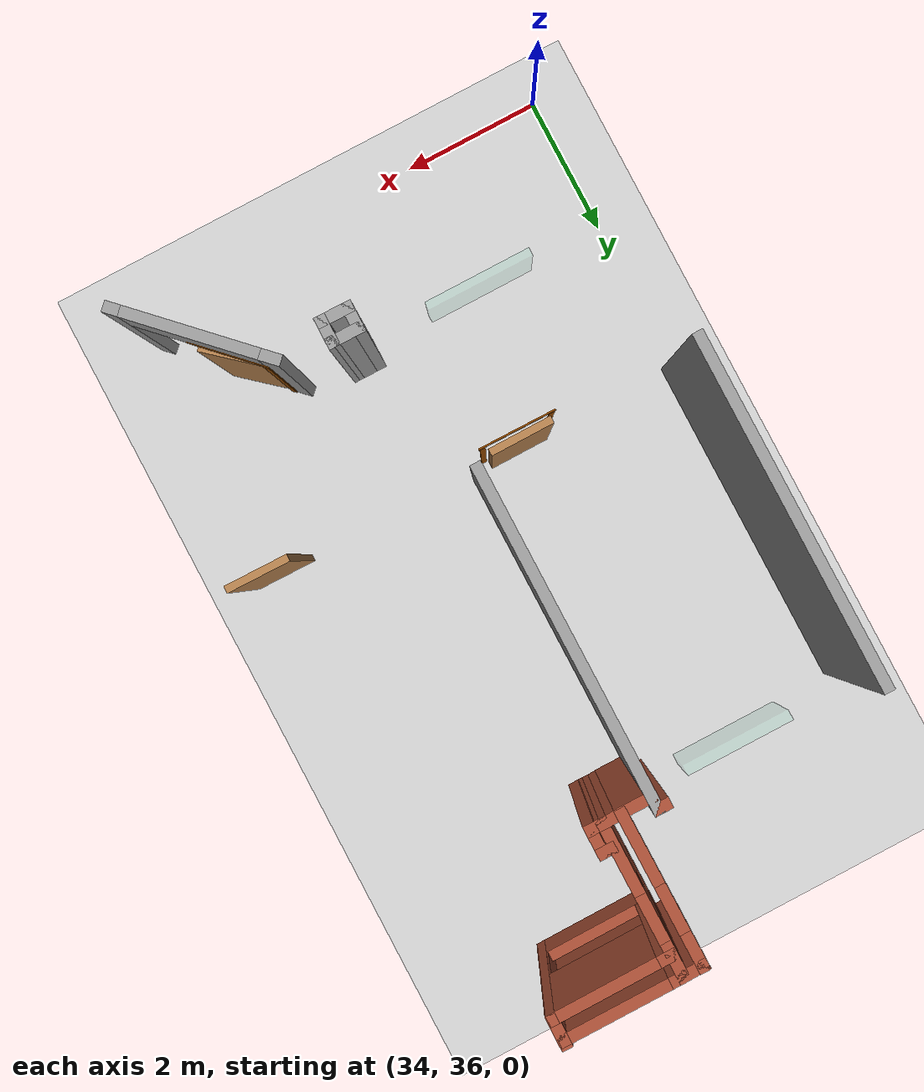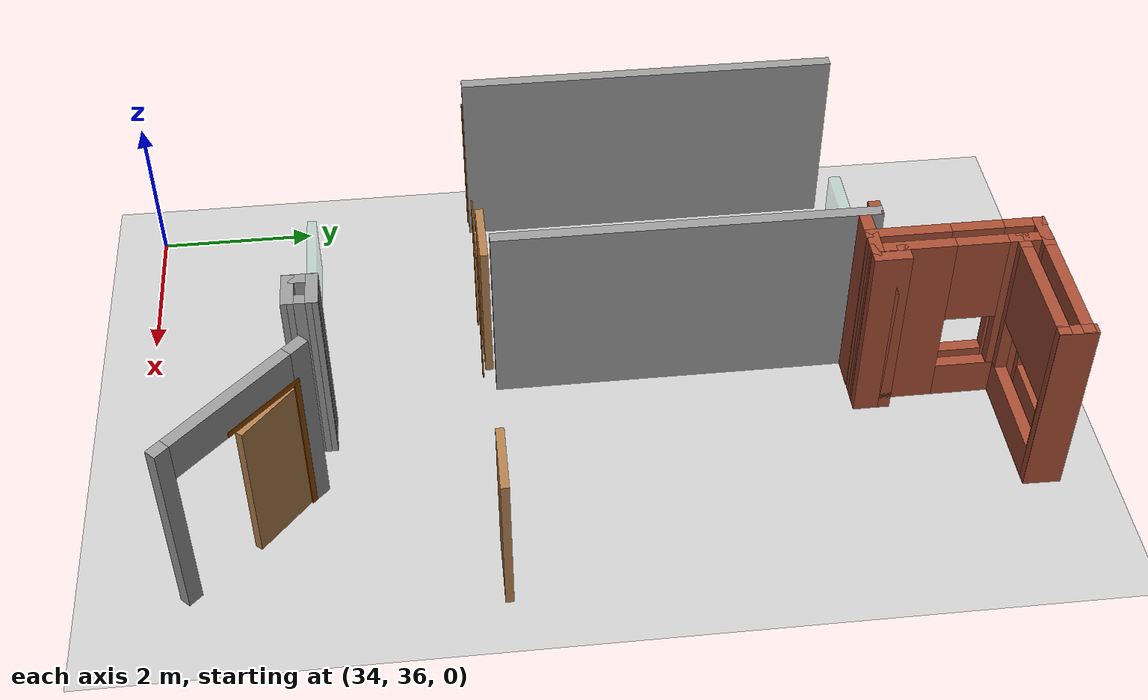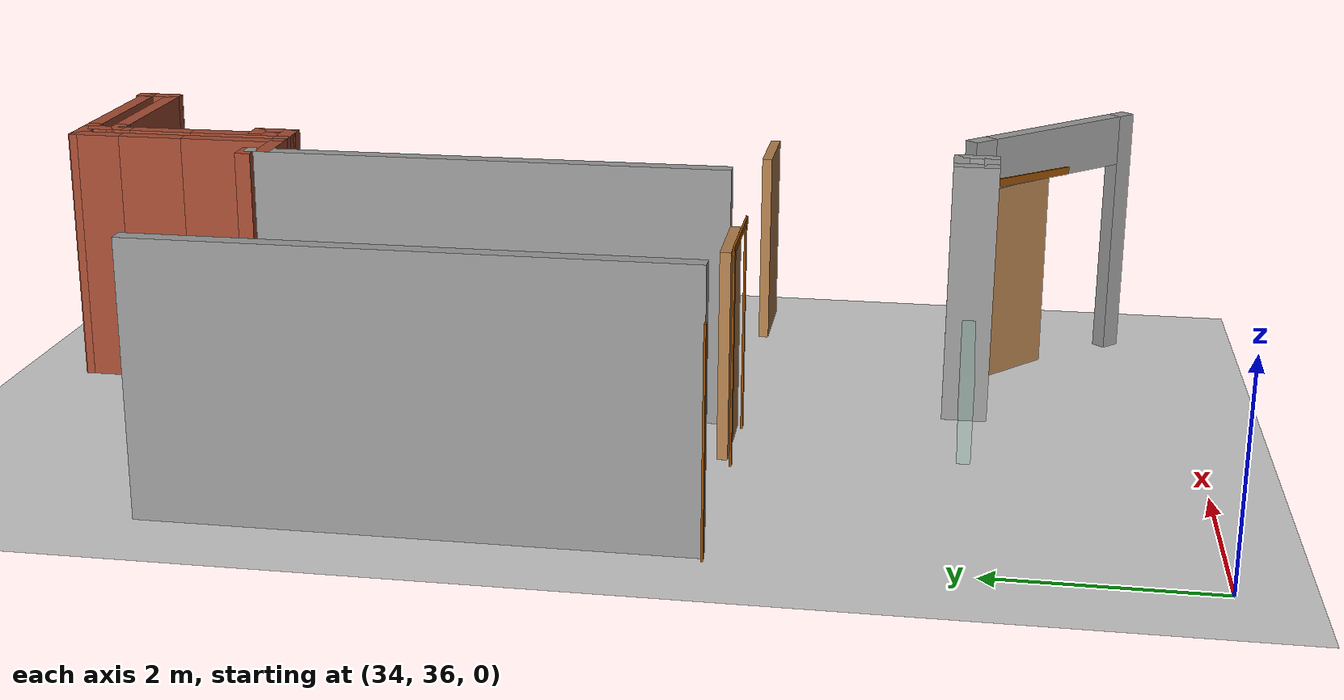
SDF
<sdf version="1.6">
 <world name="default">
  <model name="ground_plane">
   <static>1</static>
   <link name="link">
    <collision name="collision">
     <geometry><plane><normal>0 0 1</normal><size>100 100</size></plane></geometry>
     <surface><friction><ode><mu>100</mu><mu2>50</mu2></ode></friction></surface>
    </collision>
    <visual name="visual">
     <cast_shadows>0</cast_shadows>
     <geometry><plane><normal>0 0 1</normal><size>100 100</size></plane></geometry>
     <material>
      <script><uri>file://media/materials/scripts/gazebo.material</uri><name>Gazebo/Grey</name></script>
     </material>
    </visual>
   </link>
  </model>
  <model name="CVSSP">
   <pose>23.8714 24.094 0 0 -0 0</pose>
   <link name="Wall_1">
    <pose>15.5976 13.2926 0 0 0 -0.785398</pose>
    <visual name="Wall_1_Visual_0">
     <pose>-0.986494 0 1.25 0 -0 0</pose>
     <geometry><box><size>0.277012 0.15 2.5</size></box></geometry>
     <material>
      <script><uri>file://media/materials/scripts/gazebo.material</uri><name>Gazebo/Grey</name></script>
      <ambient>0.588235 0.588235 0.588235 1</ambient>
     </material>
    </visual>
    <collision name="Wall_1_Collision_0">
     <geometry><box><size>0.277012 0.15 2.5</size></box></geometry>
     <pose>-0.986494 0 1.25 0 -0 0</pose>
    </collision>
    <visual name="Wall_1_Visual_1">
     <pose>1.02335 0 1.25 0 -0 0</pose>
     <geometry><box><size>0.203299 0.15 2.5</size></box></geometry>
     <material>
      <script><uri>file://media/materials/scripts/gazebo.material</uri><name>Gazebo/Grey</name></script>
      <ambient>0.588235 0.588235 0.588235 1</ambient>
     </material>
    </visual>
    <collision name="Wall_1_Collision_1">
     <geometry><box><size>0.203299 0.15 2.5</size></box></geometry>
     <pose>1.02335 0 1.25 0 -0 0</pose>
    </collision>
    <visual name="Wall_1_Visual_2">
     <pose>0.036857 0 2.25 0 -0 0</pose>
     <geometry><box><size>1.76969 0.15 0.5</size></box></geometry>
     <material>
      <script><uri>file://media/materials/scripts/gazebo.material</uri><name>Gazebo/Grey</name></script>
      <ambient>0.588235 0.588235 0.588235 1</ambient>
     </material>
    </visual>
    <collision name="Wall_1_Collision_2">
     <geometry><box><size>1.76969 0.15 0.5</size></box></geometry>
     <pose>0.036857 0 2.25 0 -0 0</pose>
    </collision>
   </link>
   <link name="Wall_270">
    <collision name="Wall_270_Collision">
     <geometry><box><size>0.465577 0.15 2.5</size></box></geometry>
     <pose>0 0 1.25 0 -0 0</pose>
    </collision>
    <visual name="Wall_270_Visual">
     <pose>0 0 1.25 0 -0 0</pose>
     <geometry><box><size>0.465577 0.15 2.5</size></box></geometry>
     <material>
      <script><uri>file://media/materials/scripts/gazebo.material</uri><name>Gazebo/Bricks</name></script>
      <ambient>1 1 1 1</ambient>
     </material>
    </visual>
    <pose>15.5965 22.7138 0 0 0 -1.58788</pose>
   </link>
   <link name="Wall_286">
    <pose>14.7864 22.5502 0 0 0 -3.13685</pose>
    <visual name="Wall_286_Visual_0">
     <pose>-0.813568 0 1.25 0 -0 0</pose>
     <geometry><box><size>0.118345 0.15 2.5</size></box></geometry>
     <material>
      <script><uri>file://media/materials/scripts/gazebo.material</uri><name>Gazebo/Bricks</name></script>
      <ambient>1 1 1 1</ambient>
     </material>
    </visual>
    <collision name="Wall_286_Collision_0">
     <geometry><box><size>0.118345 0.15 2.5</size></box></geometry>
     <pose>-0.813568 0 1.25 0 -0 0</pose>
    </collision>
    <visual name="Wall_286_Visual_1">
     <pose>0.059173 0 0.25 0 -0 0</pose>
     <geometry><box><size>1.62714 0.15 0.5</size></box></geometry>
     <material>
      <script><uri>file://media/materials/scripts/gazebo.material</uri><name>Gazebo/Bricks</name></script>
      <ambient>1 1 1 1</ambient>
     </material>
    </visual>
    <collision name="Wall_286_Collision_1">
     <geometry><box><size>1.62714 0.15 0.5</size></box></geometry>
     <pose>0.059173 0 0.25 0 -0 0</pose>
    </collision>
    <visual name="Wall_286_Visual_2">
     <pose>0.74556 0 1.5 0 -0 0</pose>
     <geometry><box><size>0.254362 0.15 2</size></box></geometry>
     <material>
      <script><uri>file://media/materials/scripts/gazebo.material</uri><name>Gazebo/Bricks</name></script>
      <ambient>1 1 1 1</ambient>
     </material>
    </visual>
    <collision name="Wall_286_Collision_2">
     <geometry><box><size>0.254362 0.15 2</size></box></geometry>
     <pose>0.74556 0 1.5 0 -0 0</pose>
    </collision>
    <visual name="Wall_286_Visual_3">
     <pose>-0.068008 0 1.9 0 -0 0</pose>
     <geometry><box><size>1.37277 0.15 1.2</size></box></geometry>
     <material>
      <script><uri>file://media/materials/scripts/gazebo.material</uri><name>Gazebo/Bricks</name></script>
      <ambient>1 1 1 1</ambient>
     </material>
    </visual>
    <collision name="Wall_286_Collision_3">
     <geometry><box><size>1.37277 0.15 1.2</size></box></geometry>
     <pose>-0.068008 0 1.9 0 -0 0</pose>
    </collision>
   </link>
   <link name="Wall_287">
    <collision name="Wall_287_Collision">
     <geometry><box><size>0.437335 0.15 2.5</size></box></geometry>
     <pose>0 0 1.25 0 -0 0</pose>
    </collision>
    <visual name="Wall_287_Visual">
     <pose>0 0 1.25 0 -0 0</pose>
     <geometry><box><size>0.437335 0.15 2.5</size></box></geometry>
     <material>
      <script><uri>file://media/materials/scripts/gazebo.material</uri><name>Gazebo/Bricks</name></script>
      <ambient>1 1 1 1</ambient>
     </material>
    </visual>
    <pose>13.9886 22.6901 0 0 -0 1.5708</pose>
   </link>
   <link name="Wall_288">
    <pose>14.7864 22.8338 0 0 -0 0</pose>
    <visual name="Wall_288_Visual_0">
     <pose>-0.749362 0 1.25 0 -0 0</pose>
     <geometry><box><size>0.246758 0.15 2.5</size></box></geometry>
     <material>
      <script><uri>file://media/materials/scripts/gazebo.material</uri><name>Gazebo/Bricks</name></script>
      <ambient>1 1 1 1</ambient>
     </material>
    </visual>
    <collision name="Wall_288_Collision_0">
     <geometry><box><size>0.246758 0.15 2.5</size></box></geometry>
     <pose>-0.749362 0 1.25 0 -0 0</pose>
    </collision>
    <visual name="Wall_288_Visual_1">
     <pose>0.123379 0 0.25 0 -0 0</pose>
     <geometry><box><size>1.49872 0.15 0.5</size></box></geometry>
     <material>
      <script><uri>file://media/materials/scripts/gazebo.material</uri><name>Gazebo/Bricks</name></script>
      <ambient>1 1 1 1</ambient>
     </material>
    </visual>
    <collision name="Wall_288_Collision_1">
     <geometry><box><size>1.49872 0.15 0.5</size></box></geometry>
     <pose>0.123379 0 0.25 0 -0 0</pose>
    </collision>
    <visual name="Wall_288_Visual_2">
     <pose>0.806008 0 1.5 0 -0 0</pose>
     <geometry><box><size>0.133465 0.15 2</size></box></geometry>
     <material>
      <script><uri>file://media/materials/scripts/gazebo.material</uri><name>Gazebo/Bricks</name></script>
      <ambient>1 1 1 1</ambient>
     </material>
    </visual>
    <collision name="Wall_288_Collision_2">
     <geometry><box><size>0.133465 0.15 2</size></box></geometry>
     <pose>0.806008 0 1.5 0 -0 0</pose>
    </collision>
    <visual name="Wall_288_Visual_3">
     <pose>0.056646 0 1.9 0 -0 0</pose>
     <geometry><box><size>1.36526 0.15 1.2</size></box></geometry>
     <material>
      <script><uri>file://media/materials/scripts/gazebo.material</uri><name>Gazebo/Bricks</name></script>
      <ambient>1 1 1 1</ambient>
     </material>
    </visual>
    <collision name="Wall_288_Collision_3">
     <geometry><box><size>1.36526 0.15 1.2</size></box></geometry>
     <pose>0.056646 0 1.9 0 -0 0</pose>
    </collision>
   </link>
   <link name="Wall_291">
    <collision name="Wall_291_Collision">
     <geometry><box><size>0.414758 0.15 2.5</size></box></geometry>
     <pose>0 0 1.25 0 -0 0</pose>
    </collision>
    <visual name="Wall_291_Visual">
     <pose>0 0 1.25 0 -0 0</pose>
     <geometry><box><size>0.414758 0.15 2.5</size></box></geometry>
     <material>
      <script><uri>file://media/materials/scripts/gazebo.material</uri><name>Gazebo/Bricks</name></script>
      <ambient>1 1 1 1</ambient>
     </material>
    </visual>
    <pose>13.8563 22.83 0 0 0 -3.11303</pose>
   </link>
   <link name="Wall_292">
    <pose>13.7278 21.814 0 0 0 -1.56709</pose>
    <visual name="Wall_292_Visual_0">
     <pose>-0.83496 0 1.25 0 -0 0</pose>
     <geometry><box><size>0.519602 0.15 2.5</size></box></geometry>
     <material>
      <script><uri>file://media/materials/scripts/gazebo.material</uri><name>Gazebo/Bricks</name></script>
      <ambient>1 1 1 1</ambient>
     </material>
    </visual>
    <collision name="Wall_292_Collision_0">
     <geometry><box><size>0.519602 0.15 2.5</size></box></geometry>
     <pose>-0.83496 0 1.25 0 -0 0</pose>
    </collision>
    <visual name="Wall_292_Visual_1">
     <pose>0.259801 0 0.25 0 -0 0</pose>
     <geometry><box><size>1.66992 0.15 0.5</size></box></geometry>
     <material>
      <script><uri>file://media/materials/scripts/gazebo.material</uri><name>Gazebo/Bricks</name></script>
      <ambient>1 1 1 1</ambient>
     </material>
    </visual>
    <collision name="Wall_292_Collision_1">
     <geometry><box><size>1.66992 0.15 0.5</size></box></geometry>
     <pose>0.259801 0 0.25 0 -0 0</pose>
    </collision>
    <visual name="Wall_292_Visual_2">
     <pose>0.580428 0 1.5 0 -0 0</pose>
     <geometry><box><size>1.02867 0.15 2</size></box></geometry>
     <material>
      <script><uri>file://media/materials/scripts/gazebo.material</uri><name>Gazebo/Bricks</name></script>
      <ambient>1 1 1 1</ambient>
     </material>
    </visual>
    <collision name="Wall_292_Collision_2">
     <geometry><box><size>1.02867 0.15 2</size></box></geometry>
     <pose>0.580428 0 1.5 0 -0 0</pose>
    </collision>
    <visual name="Wall_292_Visual_3">
     <pose>-0.254532 0 1.9 0 -0 0</pose>
     <geometry><box><size>0.641254 0.15 1.2</size></box></geometry>
     <material>
      <script><uri>file://media/materials/scripts/gazebo.material</uri><name>Gazebo/Bricks</name></script>
      <ambient>1 1 1 1</ambient>
     </material>
    </visual>
    <collision name="Wall_292_Collision_3">
     <geometry><box><size>0.641254 0.15 1.2</size></box></geometry>
     <pose>-0.254532 0 1.9 0 -0 0</pose>
    </collision>
   </link>
   <link name="Wall_293">
    <collision name="Wall_293_Collision">
     <geometry><box><size>0.407097 0.15 2.5</size></box></geometry>
     <pose>0 0 1.25 0 -0 0</pose>
    </collision>
    <visual name="Wall_293_Visual">
     <pose>0 0 1.25 0 -0 0</pose>
     <geometry><box><size>0.407097 0.15 2.5</size></box></geometry>
     <material>
      <script><uri>file://media/materials/scripts/gazebo.material</uri><name>Gazebo/Bricks</name></script>
      <ambient>1 1 1 1</ambient>
     </material>
    </visual>
    <pose>13.8601 20.7857 0 0 0 -0.008088</pose>
   </link>
   <link name="Wall_294">
    <pose>13.9886 21.6277 0 0 -0 1.5708</pose>
    <visual name="Wall_294_Visual_0">
     <pose>-0.401803 0 1.25 0 -0 0</pose>
     <geometry><box><size>1.03275 0.15 2.5</size></box></geometry>
     <material>
      <script><uri>file://media/materials/scripts/gazebo.material</uri><name>Gazebo/Bricks</name></script>
      <ambient>1 1 1 1</ambient>
     </material>
    </visual>
    <collision name="Wall_294_Collision_0">
     <geometry><box><size>1.03275 0.15 2.5</size></box></geometry>
     <pose>-0.401803 0 1.25 0 -0 0</pose>
    </collision>
    <visual name="Wall_294_Visual_1">
     <pose>0.516374 0 0.25 0 -0 0</pose>
     <geometry><box><size>0.803605 0.15 0.5</size></box></geometry>
     <material>
      <script><uri>file://media/materials/scripts/gazebo.material</uri><name>Gazebo/Bricks</name></script>
      <ambient>1 1 1 1</ambient>
     </material>
    </visual>
    <collision name="Wall_294_Collision_1">
     <geometry><box><size>0.803605 0.15 0.5</size></box></geometry>
     <pose>0.516374 0 0.25 0 -0 0</pose>
    </collision>
    <visual name="Wall_294_Visual_2">
     <pose>0.834198 0 1.5 0 -0 0</pose>
     <geometry><box><size>0.167956 0.15 2</size></box></geometry>
     <material>
      <script><uri>file://media/materials/scripts/gazebo.material</uri><name>Gazebo/Bricks</name></script>
      <ambient>1 1 1 1</ambient>
     </material>
    </visual>
    <collision name="Wall_294_Collision_2">
     <geometry><box><size>0.167956 0.15 2</size></box></geometry>
     <pose>0.834198 0 1.5 0 -0 0</pose>
    </collision>
    <visual name="Wall_294_Visual_3">
     <pose>0.432396 0 1.9 0 -0 0</pose>
     <geometry><box><size>0.635649 0.15 1.2</size></box></geometry>
     <material>
      <script><uri>file://media/materials/scripts/gazebo.material</uri><name>Gazebo/Bricks</name></script>
      <ambient>1 1 1 1</ambient>
     </material>
    </visual>
    <collision name="Wall_294_Collision_3">
     <geometry><box><size>0.635649 0.15 1.2</size></box></geometry>
     <pose>0.432396 0 1.9 0 -0 0</pose>
    </collision>
   </link>
   <link name="Wall_296">
    <collision name="Wall_296_Collision">
     <geometry><box><size>0.30879 0.15 2.5</size></box></geometry>
     <pose>0 0 1.25 0 -0 0</pose>
    </collision>
    <visual name="Wall_296_Visual">
     <pose>0 0 1.25 0 -0 0</pose>
     <geometry><box><size>0.30879 0.15 2.5</size></box></geometry>
     <material>
      <script><uri>file://media/materials/scripts/gazebo.material</uri><name>Gazebo/Bricks</name></script>
      <ambient>1 1 1 1</ambient>
     </material>
    </visual>
    <pose>14.068 20.7846 0 0 -0 0</pose>
   </link>
   <link name="Wall_297">
    <collision name="Wall_297_Collision">
     <geometry><box><size>0.460019 0.15 2.5</size></box></geometry>
     <pose>0 0 1.25 0 -0 0</pose>
    </collision>
    <visual name="Wall_297_Visual">
     <pose>0 0 1.25 0 -0 0</pose>
     <geometry><box><size>0.460019 0.15 2.5</size></box></geometry>
     <material>
      <script><uri>file://media/materials/scripts/gazebo.material</uri><name>Gazebo/Bricks</name></script>
      <ambient>1 1 1 1</ambient>
     </material>
    </visual>
    <pose>14.1474 20.9396 0 0 -0 1.5708</pose>
   </link>
   <link name="Wall_299">
    <collision name="Wall_299_Collision">
     <geometry><box><size>0.25 0.15 2.5</size></box></geometry>
     <pose>0 0 1.25 0 -0 0</pose>
    </collision>
    <visual name="Wall_299_Visual">
     <pose>0 0 1.25 0 -0 0</pose>
     <geometry><box><size>0.25 0.15 2.5</size></box></geometry>
     <material>
      <script><uri>file://media/materials/scripts/gazebo.material</uri><name>Gazebo/Bricks</name></script>
      <ambient>1 1 1 1</ambient>
     </material>
    </visual>
    <pose>14.0974 21.0946 0 0 -0 3.14159</pose>
   </link>
   <link name="Wall_304">
    <collision name="Wall_304_Collision">
     <geometry><box><size>0.25 0.15 2.5</size></box></geometry>
     <pose>0 0 1.25 0 -0 0</pose>
    </collision>
    <visual name="Wall_304_Visual">
     <pose>0 0 1.25 0 -0 0</pose>
     <geometry><box><size>0.25 0.15 2.5</size></box></geometry>
     <material>
      <script><uri>file://media/materials/scripts/gazebo.material</uri><name>Gazebo/Bricks</name></script>
      <ambient>1 1 1 1</ambient>
     </material>
    </visual>
    <pose>13.2698 20.9408 0 0 -0 0</pose>
   </link>
   <link name="Wall_305">
    <collision name="Wall_305_Collision">
     <geometry><box><size>4.75 0.15 2.5</size></box></geometry>
     <pose>0 0 1.25 0 -0 0</pose>
    </collision>
    <visual name="Wall_305_Visual">
     <pose>0 0 1.25 0 -0 0</pose>
     <geometry><box><size>4.75 0.15 2.5</size></box></geometry>
     <material>
      <script><uri>file://media/materials/scripts/gazebo.material</uri><name>Gazebo/Grey</name></script>
      <ambient>1 1 1 1</ambient>
     </material>
    </visual>
    <pose>13.3198 18.6408 0 0 0 -1.5708</pose>
   </link>
   <link name="Wall_307">
    <collision name="Wall_307_Collision">
     <geometry><box><size>0.533753 0.15 2.5</size></box></geometry>
     <pose>0 0 1.25 0 -0 0</pose>
    </collision>
    <visual name="Wall_307_Visual">
     <pose>0 0 1.25 0 -0 0</pose>
     <geometry><box><size>0.533753 0.15 2.5</size></box></geometry>
     <material>
      <script><uri>file://media/materials/scripts/gazebo.material</uri><name>Gazebo/Bricks</name></script>
      <ambient>1 1 1 1</ambient>
     </material>
    </visual>
    <pose>13.5323 20.7794 0 0 -0 0</pose>
   </link>
   <link name="Wall_337">
    <collision name="Wall_337_Collision">
     <geometry><box><size>4.89779 0.15 2.5</size></box></geometry>
     <pose>0 0 1.25 0 -0 0</pose>
    </collision>
    <visual name="Wall_337_Visual">
     <pose>0 0 1.25 0 -0 0</pose>
     <geometry><box><size>4.89779 0.15 2.5</size></box></geometry>
     <material>
      <script><uri>file://media/materials/scripts/gazebo.material</uri><name>Gazebo/Grey</name></script>
      <ambient>0.588235 0.588235 0.588235 1</ambient>
     </material>
    </visual>
    <pose>10.2148 18.5614 0 0 -0 1.5708</pose>
   </link>
   <link name="Wall_62">
    <collision name="Wall_62_Collision">
     <geometry><box><size>0.5 0.15 2.5</size></box></geometry>
     <pose>0 0 1.25 0 -0 0</pose>
    </collision>
    <visual name="Wall_62_Visual">
     <pose>0 0 1.25 0 -0 0</pose>
     <geometry><box><size>0.5 0.15 2.5</size></box></geometry>
     <material>
      <script><uri>file://media/materials/scripts/gazebo.material</uri><name>Gazebo/Grey</name></script>
      <ambient>1 1 1 1</ambient>
     </material>
    </visual>
    <pose>13.9808 14.1734 0 0 -0 0</pose>
   </link>
   <link name="Wall_63">
    <collision name="Wall_63_Collision">
     <geometry><box><size>0.433407 0.15 2.5</size></box></geometry>
     <pose>0 0 1.25 0 -0 0</pose>
    </collision>
    <visual name="Wall_63_Visual">
     <pose>0 0 1.25 0 -0 0</pose>
     <geometry><box><size>0.433407 0.15 2.5</size></box></geometry>
     <material>
      <script><uri>file://media/materials/scripts/gazebo.material</uri><name>Gazebo/Grey</name></script>
      <ambient>1 1 1 1</ambient>
     </material>
    </visual>
    <pose>14.1548 14.0317 0 0 0 -1.57777</pose>
   </link>
   <link name="Wall_64">
    <collision name="Wall_64_Collision">
     <geometry><box><size>0.498059 0.15 2.5</size></box></geometry>
     <pose>0 0 1.25 0 -0 0</pose>
    </collision>
    <visual name="Wall_64_Visual">
     <pose>0 0 1.25 0 -0 0</pose>
     <geometry><box><size>0.498059 0.15 2.5</size></box></geometry>
     <material>
      <script><uri>file://media/materials/scripts/gazebo.material</uri><name>Gazebo/Grey</name></script>
      <ambient>1 1 1 1</ambient>
     </material>
    </visual>
    <pose>13.9798 13.8925 0 0 -0 3.12731</pose>
   </link>
   <link name="Wall_65">
    <collision name="Wall_65_Collision">
     <geometry><box><size>0.428419 0.15 2.5</size></box></geometry>
     <pose>0 0 1.25 0 -0 0</pose>
    </collision>
    <visual name="Wall_65_Visual">
     <pose>0 0 1.25 0 -0 0</pose>
     <geometry><box><size>0.428419 0.15 2.5</size></box></geometry>
     <material>
      <script><uri>file://media/materials/scripts/gazebo.material</uri><name>Gazebo/Grey</name></script>
      <ambient>1 1 1 1</ambient>
     </material>
    </visual>
    <pose>13.8008 14.0342 0 0 -0 1.5708</pose>
   </link>
   <static>1</static>
  </model>
  <model name="Basic_ply_door">
   <link name="link">
    <pose>1.20031 2.43241 0.995323 -0 -0 -0.009284</pose>
    <inertial>
     <mass>0.5167</mass>
     <inertia>
      <ixx>0.00086117</ixx>
      <ixy>0</ixy>
      <ixz>0</ixz>
      <iyy>0.00086117</iyy>
      <iyz>0</iyz>
      <izz>0.00086117</izz>
     </inertia>
    </inertial>
    <gravity>0</gravity>
    <visual name="visual">
     <geometry><box><size>0.88 0.1 1.96</size></box></geometry>
     <material>
      <script><uri>file://media/materials/scripts/gazebo.material</uri><name>Gazebo/Wood</name></script>
      <shader type="pixel"><normal_map>__default__</normal_map></shader>
      <ambient>1 1 1 1</ambient>
      <diffuse>1 1 1 1</diffuse>
      <specular>0.2 0.2 0.2 1</specular>
      <emissive>0 0 0 1</emissive>
     </material>
    </visual>
    <collision name="collision">
     <geometry><box><size>0.88 0.1 1.96</size></box></geometry>
     <surface>
      <friction>
       <ode><mu>1</mu><mu2>1</mu2><fdir1>0 0 0</fdir1><slip1>0</slip1><slip2>0</slip2></ode>
       <torsional>
        <coefficient>1</coefficient>
        <patch_radius>0</patch_radius>
        <surface_radius>0.01</surface_radius>
        <use_patch_radius>0</use_patch_radius>
        <ode><slip>0</slip></ode>
       </torsional>
      </friction>
      <bounce><restitution_coefficient>0</restitution_coefficient><threshold>1e+06</threshold></bounce>
      <contact>
       <collide_without_contact>0</collide_without_contact>
       <collide_without_contact_bitmask>1</collide_without_contact_bitmask>
       <collide_bitmask>1</collide_bitmask>
       <ode>
        <soft_cfm>0</soft_cfm>
        <soft_erp>0.2</soft_erp>
        <kp>100000</kp>
        <kd>100</kd>
        <max_vel>100</max_vel>
        <min_depth>0.001</min_depth>
       </ode>
       <bullet>
        <split_impulse>1</split_impulse>
        <split_impulse_penetration_threshold>-0.01</split_impulse_penetration_threshold>
        <soft_cfm>0</soft_cfm>
        <soft_erp>0.2</soft_erp>
        <kp>100000</kp>
        <kd>100</kd>
       </bullet>
      </contact>
     </surface>
    </collision>
   </link>
   <static>1</static>
   <pose>39.0212 37.8356 -0.001013 0 -0 0</pose>
  </model>
  <model name="window_0_clone">
   <link name="link">
    <inertial>
     <mass>0.185318</mass>
     <inertia>
      <ixx>0.0157792</ixx>
      <ixy>0</ixy>
      <ixz>0</ixz>
      <iyy>0.0398142</iyy>
      <iyz>0</iyz>
      <izz>0.0247071</izz>
     </inertia>
    </inertial>
    <visual name="visual">
     <geometry><box><size>1.55374 0.147514 0.82384</size></box></geometry>
     <material>
      <script><name>Gazebo/Grey</name><uri>file://media/materials/scripts/gazebo.material</uri></script>
      <shader type="pixel"><normal_map>__default__</normal_map></shader>
      <ambient>0.435 0.796 0.675 1</ambient>
      <diffuse>0.7 0.7 0.7 1</diffuse>
      <specular>0.01 0.01 0.01 1</specular>
      <emissive>0 0 0 1</emissive>
     </material>
     <transparency>0.8</transparency>
    </visual>
    <collision name="collision">
     <geometry><box><size>1.55374 0.147514 0.82384</size></box></geometry>
     <surface>
      <friction>
       <ode><mu>1</mu><mu2>1</mu2><fdir1>0 0 0</fdir1><slip1>0</slip1><slip2>0</slip2></ode>
       <torsional>
        <coefficient>1</coefficient>
        <patch_radius>0</patch_radius>
        <surface_radius>0</surface_radius>
        <use_patch_radius>1</use_patch_radius>
        <ode><slip>0</slip></ode>
       </torsional>
      </friction>
      <bounce><restitution_coefficient>0</restitution_coefficient><threshold>1e+06</threshold></bounce>
      <contact>
       <collide_without_contact>0</collide_without_contact>
       <collide_without_contact_bitmask>1</collide_without_contact_bitmask>
       <collide_bitmask>1</collide_bitmask>
       <ode>
        <soft_cfm>0</soft_cfm>
        <soft_erp>0.2</soft_erp>
        <kp>1e+13</kp>
        <kd>1</kd>
        <max_vel>0.01</max_vel>
        <min_depth>0</min_depth>
       </ode>
       <bullet>
        <split_impulse>1</split_impulse>
        <split_impulse_penetration_threshold>-0.01</split_impulse_penetration_threshold>
        <soft_cfm>0</soft_cfm>
        <soft_erp>0.2</soft_erp>
        <kp>1e+13</kp>
        <kd>1</kd>
       </bullet>
      </contact>
     </surface>
    </collision>
   </link>
   <static>1</static>
   <pose>35.8388 45.0823 0.890829 0 -0 0</pose>
  </model>
  <model name="basic_ply_door_corrected_clone_clone">
   <link name="link">
    <pose>-0 0 1.00385 0 -0 0</pose>
    <inertial>
     <mass>0.5167</mass>
     <inertia>
      <ixx>0.00086117</ixx>
      <ixy>0</ixy>
      <ixz>0</ixz>
      <iyy>0.00086117</iyy>
      <iyz>0</iyz>
      <izz>0.00086117</izz>
     </inertia>
    </inertial>
    <gravity>0</gravity>
    <visual name="visual">
     <geometry><box><size>0.88 0.1 1.96</size></box></geometry>
     <material>
      <script><uri>file://media/materials/scripts/gazebo.material</uri><name>Gazebo/Wood</name></script>
      <shader type="pixel"><normal_map>__default__</normal_map></shader>
      <ambient>1 1 1 1</ambient>
      <diffuse>1 1 1 1</diffuse>
      <specular>0.2 0.2 0.2 1</specular>
      <emissive>0 0 0 1</emissive>
     </material>
    </visual>
    <collision name="collision">
     <geometry><box><size>0.88 0.1 1.96</size></box></geometry>
     <surface>
      <friction>
       <ode><mu>1</mu><mu2>1</mu2><fdir1>0 0 0</fdir1><slip1>0</slip1><slip2>0</slip2></ode>
       <torsional>
        <coefficient>1</coefficient>
        <patch_radius>0</patch_radius>
        <surface_radius>0.01</surface_radius>
        <use_patch_radius>0</use_patch_radius>
        <ode><slip>0</slip></ode>
       </torsional>
      </friction>
      <bounce><restitution_coefficient>0</restitution_coefficient><threshold>1e+06</threshold></bounce>
      <contact>
       <collide_without_contact>0</collide_without_contact>
       <collide_without_contact_bitmask>1</collide_without_contact_bitmask>
       <collide_bitmask>1</collide_bitmask>
       <ode>
        <soft_cfm>0</soft_cfm>
        <soft_erp>0.2</soft_erp>
        <kp>100000</kp>
        <kd>100</kd>
        <max_vel>100</max_vel>
        <min_depth>0.001</min_depth>
       </ode>
       <bullet>
        <split_impulse>1</split_impulse>
        <split_impulse_penetration_threshold>-0.01</split_impulse_penetration_threshold>
        <soft_cfm>0</soft_cfm>
        <soft_erp>0.2</soft_erp>
        <kp>100000</kp>
        <kd>100</kd>
       </bullet>
      </contact>
     </surface>
    </collision>
   </link>
   <static>1</static>
   <pose>36.5115 40.2899 0.02761 0 -0 0.005419</pose>
  </model>
  <model name="window_rlab">
   <link name="link">
    <inertial>
     <mass>0.185318</mass>
     <inertia>
      <ixx>0.0157792</ixx>
      <ixy>0</ixy>
      <ixz>0</ixz>
      <iyy>0.0398142</iyy>
      <iyz>0</iyz>
      <izz>0.0247071</izz>
     </inertia>
    </inertial>
    <gravity>0</gravity>
    <visual name="visual">
     <geometry><box><size>1.54426 0.115953 0.786254</size></box></geometry>
     <material>
      <script><name>Gazebo/Grey</name><uri>file://media/materials/scripts/gazebo.material</uri></script>
      <shader type="pixel"><normal_map>__default__</normal_map></shader>
      <ambient>0.435 0.796 0.675 1</ambient>
      <diffuse>0.7 0.7 0.7 1</diffuse>
      <specular>0.01 0.01 0.01 1</specular>
      <emissive>0 0 0 1</emissive>
     </material>
     <transparency>0.8</transparency>
    </visual>
    <collision name="collision">
     <geometry><box><size>1.54426 0.115953 0.786254</size></box></geometry>
     <surface>
      <friction>
       <ode><mu>1</mu><mu2>1</mu2><fdir1>0 0 0</fdir1><slip1>0</slip1><slip2>0</slip2></ode>
       <torsional>
        <coefficient>1</coefficient>
        <patch_radius>0</patch_radius>
        <surface_radius>0</surface_radius>
        <use_patch_radius>1</use_patch_radius>
        <ode><slip>0</slip></ode>
       </torsional>
      </friction>
      <bounce><restitution_coefficient>0</restitution_coefficient><threshold>1e+06</threshold></bounce>
      <contact>
       <collide_without_contact>0</collide_without_contact>
       <collide_without_contact_bitmask>1</collide_without_contact_bitmask>
       <collide_bitmask>1</collide_bitmask>
       <ode>
        <soft_cfm>0</soft_cfm>
        <soft_erp>0.2</soft_erp>
        <kp>1e+13</kp>
        <kd>1</kd>
        <max_vel>0.01</max_vel>
        <min_depth>0</min_depth>
       </ode>
       <bullet>
        <split_impulse>1</split_impulse>
        <split_impulse_penetration_threshold>-0.01</split_impulse_penetration_threshold>
        <soft_cfm>0</soft_cfm>
        <soft_erp>0.2</soft_erp>
        <kp>1e+13</kp>
        <kd>1</kd>
       </bullet>
      </contact>
     </surface>
    </collision>
   </link>
   <static>1</static>
   <pose>35.9818 38.1379 0.88691 0 -0 0</pose>
  </model>
  <model name="basic_ply_door_corrected_clone_clone_clone_0">
   <link name="link">
    <pose>-0 0 1.00385 0 -0 0</pose>
    <inertial>
     <mass>0.5167</mass>
     <inertia>
      <ixx>0.00086117</ixx>
      <ixy>0</ixy>
      <ixz>0</ixz>
      <iyy>0.00086117</iyy>
      <iyz>0</iyz>
      <izz>0.00086117</izz>
     </inertia>
    </inertial>
    <gravity>0</gravity>
    <visual name="visual">
     <geometry><box><size>0.88 0.1 1.96</size></box></geometry>
     <material>
      <script><uri>file://media/materials/scripts/gazebo.material</uri><name>Gazebo/Wood</name></script>
      <shader type="pixel"><normal_map>__default__</normal_map></shader>
      <ambient>1 1 1 1</ambient>
      <diffuse>1 1 1 1</diffuse>
      <specular>0.2 0.2 0.2 1</specular>
      <emissive>0 0 0 1</emissive>
     </material>
    </visual>
    <collision name="collision">
     <geometry><box><size>0.88 0.1 1.96</size></box></geometry>
     <surface>
      <friction>
       <ode><mu>1</mu><mu2>1</mu2><fdir1>0 0 0</fdir1><slip1>0</slip1><slip2>0</slip2></ode>
       <torsional>
        <coefficient>1</coefficient>
        <patch_radius>0</patch_radius>
        <surface_radius>0.01</surface_radius>
        <use_patch_radius>0</use_patch_radius>
        <ode><slip>0</slip></ode>
       </torsional>
      </friction>
      <bounce><restitution_coefficient>0</restitution_coefficient><threshold>1e+06</threshold></bounce>
      <contact>
       <collide_without_contact>0</collide_without_contact>
       <collide_without_contact_bitmask>1</collide_without_contact_bitmask>
       <collide_bitmask>1</collide_bitmask>
       <ode>
        <soft_cfm>0</soft_cfm>
        <soft_erp>0.2</soft_erp>
        <kp>100000</kp>
        <kd>100</kd>
        <max_vel>100</max_vel>
        <min_depth>0.001</min_depth>
       </ode>
       <bullet>
        <split_impulse>1</split_impulse>
        <split_impulse_penetration_threshold>-0.01</split_impulse_penetration_threshold>
        <soft_cfm>0</soft_cfm>
        <soft_erp>0.2</soft_erp>
        <kp>100000</kp>
        <kd>100</kd>
       </bullet>
      </contact>
     </surface>
    </collision>
   </link>
   <static>1</static>
   <pose>39.2213 37.6969 -0.013611 -0.006074 -0.001069 -0.713436</pose>
  </model>
  <model name="oak_frame_0_clone_clone_7_clone_clone_0">
   <link name="link">
    <inertial>
     <mass>1</mass>
     <inertia>
      <ixx>0.166667</ixx>
      <ixy>0</ixy>
      <ixz>0</ixz>
      <iyy>0.166667</iyy>
      <iyz>0</iyz>
      <izz>0.166667</izz>
     </inertia>
    </inertial>
    <visual name="visual">
     <geometry><box><size>0.018685 0.076446 2.026</size></box></geometry>
     <material>
      <script><name>Gazebo/Grey</name><uri>file://media/materials/scripts/gazebo.material</uri></script>
      <shader type="pixel"><normal_map>__default__</normal_map></shader>
      <diffuse>0.58 0.29 0 0</diffuse>
      <ambient>0.58 0.29 0 1</ambient>
      <specular>0.01 0.01 0.01 1</specular>
      <emissive>0 0 0 1</emissive>
     </material>
    </visual>
    <collision name="collision">
     <geometry><box><size>0.018685 0.076446 2.026</size></box></geometry>
     <surface>
      <friction>
       <ode><mu>1</mu><mu2>1</mu2><fdir1>0 0 0</fdir1><slip1>0</slip1><slip2>0</slip2></ode>
       <torsional>
        <coefficient>1</coefficient>
        <patch_radius>0</patch_radius>
        <surface_radius>0</surface_radius>
        <use_patch_radius>1</use_patch_radius>
        <ode><slip>0</slip></ode>
       </torsional>
      </friction>
      <bounce><restitution_coefficient>0</restitution_coefficient><threshold>1e+06</threshold></bounce>
      <contact>
       <collide_without_contact>0</collide_without_contact>
       <collide_without_contact_bitmask>1</collide_without_contact_bitmask>
       <collide_bitmask>1</collide_bitmask>
       <ode>
        <soft_cfm>0</soft_cfm>
        <soft_erp>0.2</soft_erp>
        <kp>1e+13</kp>
        <kd>1</kd>
        <max_vel>0.01</max_vel>
        <min_depth>0</min_depth>
       </ode>
       <bullet>
        <split_impulse>1</split_impulse>
        <split_impulse_penetration_threshold>-0.01</split_impulse_penetration_threshold>
        <soft_cfm>0</soft_cfm>
        <soft_erp>0.2</soft_erp>
        <kp>1e+13</kp>
        <kd>1</kd>
       </bullet>
      </contact>
     </surface>
    </collision>
   </link>
   <static>1</static>
   <pose>38.9132 38.0588 1.03242 0 -0 0.782752</pose>
  </model>
  <model name="oak_frame_0_clone_clone_7_clone_clone_2">
   <link name="link">
    <inertial>
     <mass>1</mass>
     <inertia>
      <ixx>0.166667</ixx>
      <ixy>0</ixy>
      <ixz>0</ixz>
      <iyy>0.166667</iyy>
      <iyz>0</iyz>
      <izz>0.166667</izz>
     </inertia>
    </inertial>
    <visual name="visual">
     <geometry><box><size>0.018685 0.076446 2.026</size></box></geometry>
     <material>
      <script><name>Gazebo/Grey</name><uri>file://media/materials/scripts/gazebo.material</uri></script>
      <shader type="pixel"><normal_map>__default__</normal_map></shader>
      <diffuse>0.58 0.29 0 0</diffuse>
      <ambient>0.58 0.29 0 1</ambient>
      <specular>0.01 0.01 0.01 1</specular>
      <emissive>0 0 0 1</emissive>
     </material>
    </visual>
    <collision name="collision">
     <geometry><box><size>0.018685 0.076446 2.026</size></box></geometry>
     <surface>
      <friction>
       <ode><mu>1</mu><mu2>1</mu2><fdir1>0 0 0</fdir1><slip1>0</slip1><slip2>0</slip2></ode>
       <torsional>
        <coefficient>1</coefficient>
        <patch_radius>0</patch_radius>
        <surface_radius>0</surface_radius>
        <use_patch_radius>1</use_patch_radius>
        <ode><slip>0</slip></ode>
       </torsional>
      </friction>
      <bounce><restitution_coefficient>0</restitution_coefficient><threshold>1e+06</threshold></bounce>
      <contact>
       <collide_without_contact>0</collide_without_contact>
       <collide_without_contact_bitmask>1</collide_without_contact_bitmask>
       <collide_bitmask>1</collide_bitmask>
       <ode>
        <soft_cfm>0</soft_cfm>
        <soft_erp>0.2</soft_erp>
        <kp>1e+13</kp>
        <kd>1</kd>
        <max_vel>0.01</max_vel>
        <min_depth>0</min_depth>
       </ode>
       <bullet>
        <split_impulse>1</split_impulse>
        <split_impulse_penetration_threshold>-0.01</split_impulse_penetration_threshold>
        <soft_cfm>0</soft_cfm>
        <soft_erp>0.2</soft_erp>
        <kp>1e+13</kp>
        <kd>1</kd>
       </bullet>
      </contact>
     </surface>
    </collision>
   </link>
   <static>1</static>
   <pose>38.7874 37.94 1.03242 0 -0 0.79165</pose>
  </model>
  <model name="oak_frame_0_clone_clone_10_clone_clone_0">
   <link name="link">
    <inertial>
     <mass>1</mass>
     <inertia>
      <ixx>0.166667</ixx>
      <ixy>0</ixy>
      <ixz>0</ixz>
      <iyy>0.166667</iyy>
      <iyz>0</iyz>
      <izz>0.166667</izz>
     </inertia>
    </inertial>
    <visual name="visual">
     <geometry><box><size>0.018685 0.076446 2.026</size></box></geometry>
     <material>
      <script><name>Gazebo/Grey</name><uri>file://media/materials/scripts/gazebo.material</uri></script>
      <shader type="pixel"><normal_map>__default__</normal_map></shader>
      <diffuse>0.58 0.29 0 0</diffuse>
      <ambient>0.58 0.29 0 1</ambient>
      <specular>0.01 0.01 0.01 1</specular>
      <emissive>0 0 0 1</emissive>
     </material>
    </visual>
    <collision name="collision">
     <geometry><box><size>0.018685 0.076446 2.026</size></box></geometry>
     <surface>
      <friction>
       <ode><mu>1</mu><mu2>1</mu2><fdir1>0 0 0</fdir1><slip1>0</slip1><slip2>0</slip2></ode>
       <torsional>
        <coefficient>1</coefficient>
        <patch_radius>0</patch_radius>
        <surface_radius>0</surface_radius>
        <use_patch_radius>1</use_patch_radius>
        <ode><slip>0</slip></ode>
       </torsional>
      </friction>
      <bounce><restitution_coefficient>0</restitution_coefficient><threshold>1e+06</threshold></bounce>
      <contact>
       <collide_without_contact>0</collide_without_contact>
       <collide_without_contact_bitmask>1</collide_without_contact_bitmask>
       <collide_bitmask>1</collide_bitmask>
       <ode>
        <soft_cfm>0</soft_cfm>
        <soft_erp>0.2</soft_erp>
        <kp>1e+13</kp>
        <kd>1</kd>
        <max_vel>0.01</max_vel>
        <min_depth>0</min_depth>
       </ode>
       <bullet>
        <split_impulse>1</split_impulse>
        <split_impulse_penetration_threshold>-0.01</split_impulse_penetration_threshold>
        <soft_cfm>0</soft_cfm>
        <soft_erp>0.2</soft_erp>
        <kp>1e+13</kp>
        <kd>1</kd>
       </bullet>
      </contact>
     </surface>
    </collision>
   </link>
   <static>1</static>
   <pose>37.0122 40.207 1.03242 0 0 -1.56774</pose>
  </model>
  <model name="oak_frame_0_clone_clone_10_clone_clone_1">
   <link name="link">
    <inertial>
     <mass>1</mass>
     <inertia>
      <ixx>0.166667</ixx>
      <ixy>0</ixy>
      <ixz>0</ixz>
      <iyy>0.166667</iyy>
      <iyz>0</iyz>
      <izz>0.166667</izz>
     </inertia>
    </inertial>
    <visual name="visual">
     <geometry><box><size>0.018685 0.076446 2.026</size></box></geometry>
     <material>
      <script><name>Gazebo/Grey</name><uri>file://media/materials/scripts/gazebo.material</uri></script>
      <shader type="pixel"><normal_map>__default__</normal_map></shader>
      <diffuse>0.58 0.29 0 0</diffuse>
      <ambient>0.58 0.29 0 1</ambient>
      <specular>0.01 0.01 0.01 1</specular>
      <emissive>0 0 0 1</emissive>
     </material>
    </visual>
    <collision name="collision">
     <geometry><box><size>0.018685 0.076446 2.026</size></box></geometry>
     <surface>
      <friction>
       <ode><mu>1</mu><mu2>1</mu2><fdir1>0 0 0</fdir1><slip1>0</slip1><slip2>0</slip2></ode>
       <torsional>
        <coefficient>1</coefficient>
        <patch_radius>0</patch_radius>
        <surface_radius>0</surface_radius>
        <use_patch_radius>1</use_patch_radius>
        <ode><slip>0</slip></ode>
       </torsional>
      </friction>
      <bounce><restitution_coefficient>0</restitution_coefficient><threshold>1e+06</threshold></bounce>
      <contact>
       <collide_without_contact>0</collide_without_contact>
       <collide_without_contact_bitmask>1</collide_without_contact_bitmask>
       <collide_bitmask>1</collide_bitmask>
       <ode>
        <soft_cfm>0</soft_cfm>
        <soft_erp>0.2</soft_erp>
        <kp>1e+13</kp>
        <kd>1</kd>
        <max_vel>0.01</max_vel>
        <min_depth>0</min_depth>
       </ode>
       <bullet>
        <split_impulse>1</split_impulse>
        <split_impulse_penetration_threshold>-0.01</split_impulse_penetration_threshold>
        <soft_cfm>0</soft_cfm>
        <soft_erp>0.2</soft_erp>
        <kp>1e+13</kp>
        <kd>1</kd>
       </bullet>
      </contact>
     </surface>
    </collision>
   </link>
   <static>1</static>
   <pose>36.0304 40.2038 1.03242 0 0 -1.56774</pose>
  </model>
  <model name="oak_frame_0_clone_clone_10_clone_clone_2">
   <link name="link">
    <inertial>
     <mass>1</mass>
     <inertia>
      <ixx>0.166667</ixx>
      <ixy>0</ixy>
      <ixz>0</ixz>
      <iyy>0.166667</iyy>
      <iyz>0</iyz>
      <izz>0.166667</izz>
     </inertia>
    </inertial>
    <visual name="visual">
     <geometry><box><size>0.018685 0.076446 2.026</size></box></geometry>
     <material>
      <script><name>Gazebo/Grey</name><uri>file://media/materials/scripts/gazebo.material</uri></script>
      <shader type="pixel"><normal_map>__default__</normal_map></shader>
      <diffuse>0.58 0.29 0 0</diffuse>
      <ambient>0.58 0.29 0 1</ambient>
      <specular>0.01 0.01 0.01 1</specular>
      <emissive>0 0 0 1</emissive>
     </material>
    </visual>
    <collision name="collision">
     <geometry><box><size>0.018685 0.076446 2.026</size></box></geometry>
     <surface>
      <friction>
       <ode><mu>1</mu><mu2>1</mu2><fdir1>0 0 0</fdir1><slip1>0</slip1><slip2>0</slip2></ode>
       <torsional>
        <coefficient>1</coefficient>
        <patch_radius>0</patch_radius>
        <surface_radius>0</surface_radius>
        <use_patch_radius>1</use_patch_radius>
        <ode><slip>0</slip></ode>
       </torsional>
      </friction>
      <bounce><restitution_coefficient>0</restitution_coefficient><threshold>1e+06</threshold></bounce>
      <contact>
       <collide_without_contact>0</collide_without_contact>
       <collide_without_contact_bitmask>1</collide_without_contact_bitmask>
       <collide_bitmask>1</collide_bitmask>
       <ode>
        <soft_cfm>0</soft_cfm>
        <soft_erp>0.2</soft_erp>
        <kp>1e+13</kp>
        <kd>1</kd>
        <max_vel>0.01</max_vel>
        <min_depth>0</min_depth>
       </ode>
       <bullet>
        <split_impulse>1</split_impulse>
        <split_impulse_penetration_threshold>-0.01</split_impulse_penetration_threshold>
        <soft_cfm>0</soft_cfm>
        <soft_erp>0.2</soft_erp>
        <kp>1e+13</kp>
        <kd>1</kd>
       </bullet>
      </contact>
     </surface>
    </collision>
   </link>
   <static>1</static>
   <pose>33.9419 40.2005 1.03242 0 0 -1.56774</pose>
  </model>
  <model name="oak_frame_0_clone_0_clone_8_clone_0_clone">
   <link name="link">
    <inertial>
     <mass>1</mass>
     <inertia>
      <ixx>0.166667</ixx>
      <ixy>0</ixy>
      <ixz>0</ixz>
      <iyy>0.166667</iyy>
      <iyz>0</iyz>
      <izz>0.166667</izz>
     </inertia>
    </inertial>
    <visual name="visual">
     <geometry><box><size>0.018685 0.076446 1.08038</size></box></geometry>
     <material>
      <script><name>Gazebo/Grey</name><uri>file://media/materials/scripts/gazebo.material</uri></script>
      <shader type="pixel"><normal_map>__default__</normal_map></shader>
      <diffuse>0.58 0.29 0 0</diffuse>
      <ambient>0.58 0.29 0 1</ambient>
      <specular>0.01 0.01 0.01 1</specular>
      <emissive>0 0 0 1</emissive>
     </material>
    </visual>
    <collision name="collision">
     <geometry><box><size>0.018685 0.076446 1.08038</size></box></geometry>
     <surface>
      <friction>
       <ode><mu>1</mu><mu2>1</mu2><fdir1>0 0 0</fdir1><slip1>0</slip1><slip2>0</slip2></ode>
       <torsional>
        <coefficient>1</coefficient>
        <patch_radius>0</patch_radius>
        <surface_radius>0</surface_radius>
        <use_patch_radius>1</use_patch_radius>
        <ode><slip>0</slip></ode>
       </torsional>
      </friction>
      <bounce><restitution_coefficient>0</restitution_coefficient><threshold>1e+06</threshold></bounce>
      <contact>
       <collide_without_contact>0</collide_without_contact>
       <collide_without_contact_bitmask>1</collide_without_contact_bitmask>
       <collide_bitmask>1</collide_bitmask>
       <ode>
        <soft_cfm>0</soft_cfm>
        <soft_erp>0.2</soft_erp>
        <kp>1e+13</kp>
        <kd>1</kd>
        <max_vel>0.01</max_vel>
        <min_depth>0</min_depth>
       </ode>
       <bullet>
        <split_impulse>1</split_impulse>
        <split_impulse_penetration_threshold>-0.01</split_impulse_penetration_threshold>
        <soft_cfm>0</soft_cfm>
        <soft_erp>0.2</soft_erp>
        <kp>1e+13</kp>
        <kd>1</kd>
       </bullet>
      </contact>
     </surface>
    </collision>
   </link>
   <static>1</static>
   <pose>39.2592 37.7027 2.05052 -1.58389 0.01298 -2.3603</pose>
  </model>
  <model name="oak_frame_0_clone_0_clone_8_clone_0_clone_0_clone">
   <link name="link">
    <inertial>
     <mass>1</mass>
     <inertia>
      <ixx>0.166667</ixx>
      <ixy>0</ixy>
      <ixz>0</ixz>
      <iyy>0.166667</iyy>
      <iyz>0</iyz>
      <izz>0.166667</izz>
     </inertia>
    </inertial>
    <visual name="visual">
     <geometry><box><size>0.018685 0.076446 1.08038</size></box></geometry>
     <material>
      <script><name>Gazebo/Grey</name><uri>file://media/materials/scripts/gazebo.material</uri></script>
      <shader type="pixel"><normal_map>__default__</normal_map></shader>
      <diffuse>0.58 0.29 0 0</diffuse>
      <ambient>0.58 0.29 0 1</ambient>
      <specular>0.01 0.01 0.01 1</specular>
      <emissive>0 0 0 1</emissive>
     </material>
    </visual>
    <collision name="collision">
     <geometry><box><size>0.018685 0.076446 1.08038</size></box></geometry>
     <surface>
      <friction>
       <ode><mu>1</mu><mu2>1</mu2><fdir1>0 0 0</fdir1><slip1>0</slip1><slip2>0</slip2></ode>
       <torsional>
        <coefficient>1</coefficient>
        <patch_radius>0</patch_radius>
        <surface_radius>0</surface_radius>
        <use_patch_radius>1</use_patch_radius>
        <ode><slip>0</slip></ode>
       </torsional>
      </friction>
      <bounce><restitution_coefficient>0</restitution_coefficient><threshold>1e+06</threshold></bounce>
      <contact>
       <collide_without_contact>0</collide_without_contact>
       <collide_without_contact_bitmask>1</collide_without_contact_bitmask>
       <collide_bitmask>1</collide_bitmask>
       <ode>
        <soft_cfm>0</soft_cfm>
        <soft_erp>0.2</soft_erp>
        <kp>1e+13</kp>
        <kd>1</kd>
        <max_vel>0.01</max_vel>
        <min_depth>0</min_depth>
       </ode>
       <bullet>
        <split_impulse>1</split_impulse>
        <split_impulse_penetration_threshold>-0.01</split_impulse_penetration_threshold>
        <soft_cfm>0</soft_cfm>
        <soft_erp>0.2</soft_erp>
        <kp>1e+13</kp>
        <kd>1</kd>
       </bullet>
      </contact>
     </surface>
    </collision>
   </link>
   <static>1</static>
   <pose>36.5239 40.2032 2.05052 -1.57088 0.018437 -1.57501</pose>
  </model>
  <model name="oak_frame_0_clone_0_clone_8_clone_0_clone_clone_0">
   <link name="link">
    <inertial>
     <mass>1</mass>
     <inertia>
      <ixx>0.166667</ixx>
      <ixy>0</ixy>
      <ixz>0</ixz>
      <iyy>0.166667</iyy>
      <iyz>0</iyz>
      <izz>0.166667</izz>
     </inertia>
    </inertial>
    <visual name="visual">
     <geometry><box><size>0.018685 0.076446 1.08038</size></box></geometry>
     <material>
      <script><name>Gazebo/Grey</name><uri>file://media/materials/scripts/gazebo.material</uri></script>
      <shader type="pixel"><normal_map>__default__</normal_map></shader>
      <diffuse>0.58 0.29 0 0</diffuse>
      <ambient>0.58 0.29 0 1</ambient>
      <specular>0.01 0.01 0.01 1</specular>
      <emissive>0 0 0 1</emissive>
     </material>
    </visual>
    <collision name="collision">
     <geometry><box><size>0.018685 0.076446 1.08038</size></box></geometry>
     <surface>
      <friction>
       <ode><mu>1</mu><mu2>1</mu2><fdir1>0 0 0</fdir1><slip1>0</slip1><slip2>0</slip2></ode>
       <torsional>
        <coefficient>1</coefficient>
        <patch_radius>0</patch_radius>
        <surface_radius>0</surface_radius>
        <use_patch_radius>1</use_patch_radius>
        <ode><slip>0</slip></ode>
       </torsional>
      </friction>
      <bounce><restitution_coefficient>0</restitution_coefficient><threshold>1e+06</threshold></bounce>
      <contact>
       <collide_without_contact>0</collide_without_contact>
       <collide_without_contact_bitmask>1</collide_without_contact_bitmask>
       <collide_bitmask>1</collide_bitmask>
       <ode>
        <soft_cfm>0</soft_cfm>
        <soft_erp>0.2</soft_erp>
        <kp>1e+13</kp>
        <kd>1</kd>
        <max_vel>0.01</max_vel>
        <min_depth>0</min_depth>
       </ode>
       <bullet>
        <split_impulse>1</split_impulse>
        <split_impulse_penetration_threshold>-0.01</split_impulse_penetration_threshold>
        <soft_cfm>0</soft_cfm>
        <soft_erp>0.2</soft_erp>
        <kp>1e+13</kp>
        <kd>1</kd>
       </bullet>
      </contact>
     </surface>
    </collision>
   </link>
   <static>1</static>
   <pose>39.1521 37.5782 2.05052 -1.58389 0.01298 -2.3603</pose>
  </model>
 </world>
</sdf>
